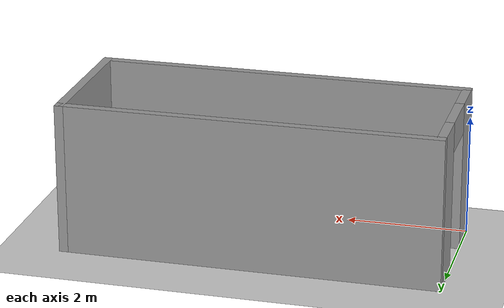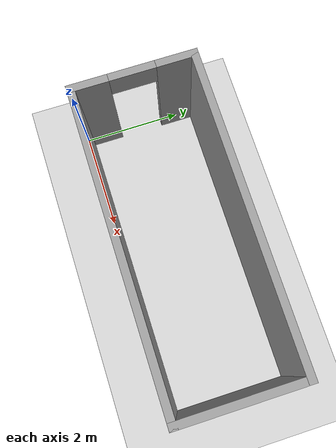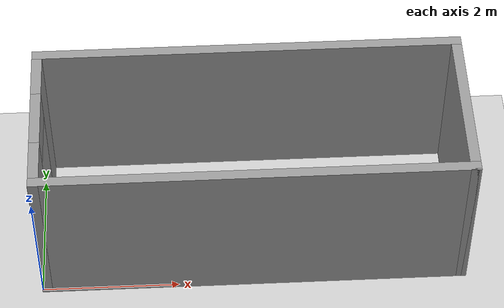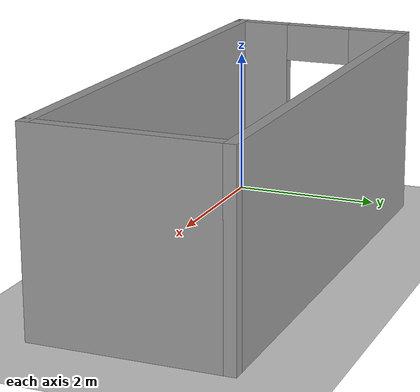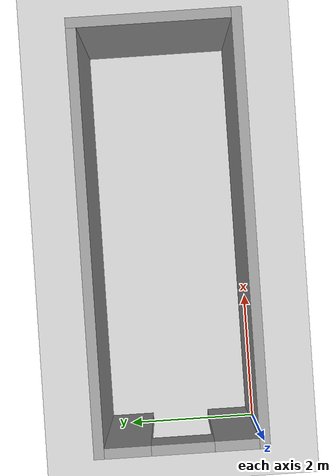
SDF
<sdf version="1.6">
 <world name="default">
  <light name="sun" type="directional">
   <pose>0 0 10 0 -0 0</pose>
   <diffuse>0.8 0.8 0.8 1</diffuse>
   <specular>0.1 0.1 0.1 1</specular>
   <attenuation>
    <range>1000</range>
    <constant>0.9</constant>
    <linear>0.01</linear>
    <quadratic>0.001</quadratic>
   </attenuation>
   <direction>-0.5 0.5 -1</direction>
  </light>
  <model name="ground_plane">
   <static>1</static>
   <link name="link">
    <collision name="collision">
     <geometry><plane><normal>0 0 1</normal><size>100 100</size></plane></geometry>
     <surface><friction><ode><mu>100</mu><mu2>50</mu2></ode></friction></surface>
    </collision>
    <visual name="visual">
     <cast_shadows>0</cast_shadows>
     <geometry><plane><normal>0 0 1</normal><size>100 100</size></plane></geometry>
     <material>
      <script><uri>file://media/materials/scripts/gazebo.material</uri><name>Gazebo/Grey</name></script>
     </material>
    </visual>
   </link>
  </model>
  <gravity>0 0 -9.8</gravity>
  <magnetic_field>6e-06 2.3e-05 -4.2e-05</magnetic_field>
  <atmosphere type="adiabatic"/>
  <physics name="default_physics" default="0" type="ode">
   <max_step_size>0.001</max_step_size>
   <real_time_factor>1</real_time_factor>
   <real_time_update_rate>1000</real_time_update_rate>
  </physics>
  <scene><ambient>0.4 0.4 0.4 1</ambient><background>0.7 0.7 0.7 1</background><shadows>1</shadows></scene>
  <spherical_coordinates>
   <surface_model>EARTH_WGS84</surface_model>
   <latitude_deg>0</latitude_deg>
   <longitude_deg>0</longitude_deg>
   <elevation>0</elevation>
   <heading_deg>0</heading_deg>
  </spherical_coordinates>
  <model name="Hallway">
   <pose>3.11839 1.20722 0 0 -0 0</pose>
   <link name="Wall_12">
    <collision name="Wall_12_Collision">
     <geometry><box><size>6.25 0.15 2.5</size></box></geometry>
     <pose>0 0 1.25 0 -0 0</pose>
    </collision>
    <visual name="Wall_12_Visual">
     <pose>0 0 1.25 0 -0 0</pose>
     <geometry><box><size>6.25 0.15 2.5</size></box></geometry>
     <material>
      <script><uri>file://media/materials/scripts/gazebo.material</uri><name>Gazebo/Grey</name></script>
      <ambient>1 1 1 1</ambient>
     </material>
    </visual>
    <pose>0 -1.175 0 0 -0 0</pose>
   </link>
   <link name="Wall_13">
    <collision name="Wall_13_Collision">
     <geometry><box><size>2.5 0.15 2.5</size></box></geometry>
     <pose>0 0 1.25 0 -0 0</pose>
    </collision>
    <visual name="Wall_13_Visual">
     <pose>0 0 1.25 0 -0 0</pose>
     <geometry><box><size>2.5 0.15 2.5</size></box></geometry>
     <material>
      <script><uri>file://media/materials/scripts/gazebo.material</uri><name>Gazebo/Grey</name></script>
      <ambient>1 1 1 1</ambient>
     </material>
    </visual>
    <pose>3.05 0 0 0 -0 1.5708</pose>
   </link>
   <link name="Wall_14">
    <collision name="Wall_14_Collision">
     <geometry><box><size>6.25 0.15 2.5</size></box></geometry>
     <pose>0 0 1.25 0 -0 0</pose>
    </collision>
    <visual name="Wall_14_Visual">
     <pose>0 0 1.25 0 -0 0</pose>
     <geometry><box><size>6.25 0.15 2.5</size></box></geometry>
     <material>
      <script><uri>file://media/materials/scripts/gazebo.material</uri><name>Gazebo/Grey</name></script>
      <ambient>1 1 1 1</ambient>
     </material>
    </visual>
    <pose>0 1.175 0 0 -0 3.14159</pose>
   </link>
   <link name="Wall_16">
    <pose>-3.05 0 0 0 0 -1.5708</pose>
    <visual name="Wall_16_Visual_0">
     <pose>-0.841204 0 1.25 0 -0 0</pose>
     <geometry><box><size>0.817591 0.15 2.5</size></box></geometry>
     <material>
      <script><uri>file://media/materials/scripts/gazebo.material</uri><name>Gazebo/Grey</name></script>
      <ambient>1 1 1 1</ambient>
     </material>
    </visual>
    <collision name="Wall_16_Collision_0">
     <geometry><box><size>0.817591 0.15 2.5</size></box></geometry>
     <pose>-0.841204 0 1.25 0 -0 0</pose>
    </collision>
    <visual name="Wall_16_Visual_1">
     <pose>0.858796 0 1.25 0 -0 0</pose>
     <geometry><box><size>0.782409 0.15 2.5</size></box></geometry>
     <material>
      <script><uri>file://media/materials/scripts/gazebo.material</uri><name>Gazebo/Grey</name></script>
      <ambient>1 1 1 1</ambient>
     </material>
    </visual>
    <collision name="Wall_16_Collision_1">
     <geometry><box><size>0.782409 0.15 2.5</size></box></geometry>
     <pose>0.858796 0 1.25 0 -0 0</pose>
    </collision>
    <visual name="Wall_16_Visual_2">
     <pose>0.017591 0 2.25 0 -0 0</pose>
     <geometry><box><size>0.9 0.15 0.5</size></box></geometry>
     <material>
      <script><uri>file://media/materials/scripts/gazebo.material</uri><name>Gazebo/Grey</name></script>
      <ambient>1 1 1 1</ambient>
     </material>
    </visual>
    <collision name="Wall_16_Collision_2">
     <geometry><box><size>0.9 0.15 0.5</size></box></geometry>
     <pose>0.017591 0 2.25 0 -0 0</pose>
    </collision>
   </link>
   <static>1</static>
  </model>
 </world>
</sdf>
